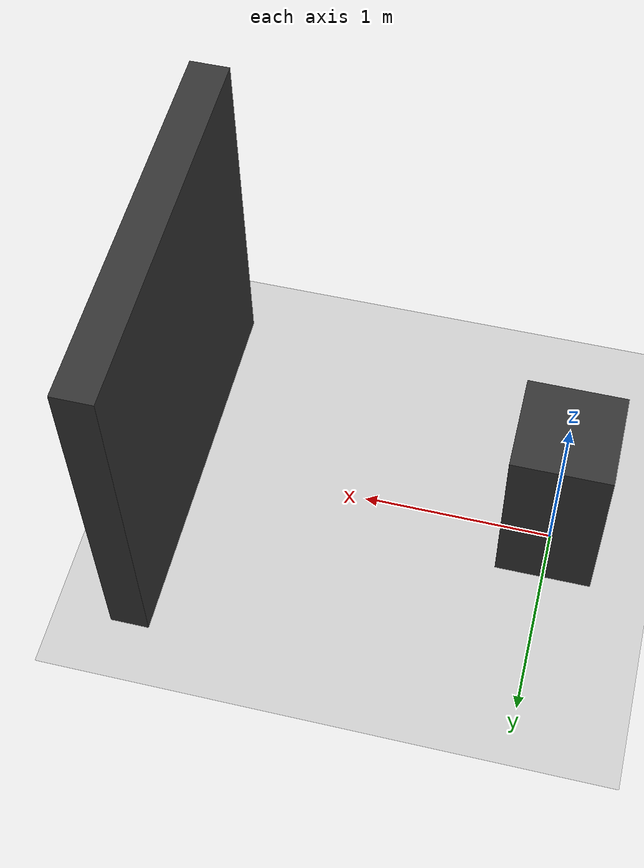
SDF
<?xml version="1.0" ?>
<sdf version="1.7">
    <world name="default">
        <!-- Physics -->
        <plugin
            filename="gz-sim-physics-system"
            name="gz::sim::systems::Physics"></plugin>
        <!-- Forwards simulation state to the GUI -->
        <plugin
            filename="gz-sim-scene-broadcaster-system"
            name="gz::sim::systems::SceneBroadcaster"></plugin>
        <!-- Processes user commands, like translate and create -->
        <plugin
            filename="gz-sim-user-commands-system"
            name="gz::sim::systems::UserCommands"></plugin>
        <!-- Generates rendering sensor data -->
        <plugin
            filename="gz-sim-sensors-system"
            name="gz::sim::systems::Sensors">
            <!-- ogre2 not working with just the MESA_GL_VERSION_OVERRIDE=3.3 trick -->
            <render_engine>ogre2</render_engine>
        </plugin>
        <plugin filename="gz-sim-imu-system"
        		name="gz::sim::systems::Imu"></plugin>
        <!-- light-->
        <light type="directional" name="sun">
            <cast_shadows>true</cast_shadows>
            <pose>0 0 10 0 0 0</pose>
            <diffuse>0.8 0.8 0.8 1</diffuse>
            <specular>0.2 0.2 0.2 1</specular>
            <attenuation>
                <range>1000</range>
                <constant>0.3</constant>
                <linear>0.01</linear>
                <quadratic>0.001</quadratic>
            </attenuation>
            <direction>-0.5 0.1 -0.9</direction>
        </light>
        <!--ground_plane-->
        <model name="ground_plane">
            <static>true</static>
            <link name="link">
                <collision name="collision">
                    <geometry>
                        <plane>
                            <normal>0 0 1</normal>
                        </plane>
                    </geometry>
                </collision>
                <visual name="visual">
                    <geometry>
                        <plane>
                            <normal>0 0 1</normal>
                            <size>100 100</size>
                        </plane>
                    </geometry>
                    <material>
                        <ambient>0.8 0.8 0.8 1</ambient>
                        <diffuse>0.8 0.8 0.8 1</diffuse>
                        <specular>0.8 0.8 0.8 1</specular>
                    </material>
                </visual>
            </link>
        </model>
        <!--box-->
        <model name="test_box">
            <pose>0 0 0.5 0 0 0</pose>
            <link name="link">
                <pose>0 0 0 0 0 0</pose>
                <collision name="collision">
                    <geometry>
                        <box>
                            <size>0.5 0.5 1.0</size>
                        </box>
                    </geometry>
                </collision>
                <visual name="visual">
                    <geometry>
                        <box>
                            <size>0.5 0.5 1.0</size>
                        </box>
                    </geometry>
                    <material>
                        <ambient>0.2 0.2 0.2 1</ambient>
                        <diffuse>0.2 0.2 0.2 1</diffuse>
                        <specular>0.2 0.2 0.2 1</specular>
                    </material>
                </visual>
            </link>
            <!--plugin for shooter-->
            <plugin filename="ProjectileShooter" name="gz::sim::systems::ProjectileShooter">
                <shooter_link>link</shooter_link>
                <shooter_offset>0.27 0 0.3 0 0 0</shooter_offset>
                <shooter_name>small_shooter</shooter_name>
                <projectile_velocity>20</projectile_velocity>
                <projectile_uri>model://rm_projectile_17mm</projectile_uri>
            </plugin>
        </model>
        <model name="target_box">
            <pose>2.0 0 0 0 0 0</pose>
            <link name="link">
                <pose>0 0 1.0 0 0 0</pose>
                <collision name="collision">
                    <geometry>
                        <box>
                            <size>0.2 2.0 2.0</size>
                        </box>
                    </geometry>
                </collision>
                <visual name="visual">
                    <geometry>
                        <box>
                            <size>0.2 2.0 2.0</size>
                        </box>
                    </geometry>
                    <material>
                        <ambient>0.2 0.2 0.2 1</ambient>
                        <diffuse>0.2 0.2 0.2 1</diffuse>
                        <specular>0.2 0.2 0.2 1</specular>
                    </material>
                </visual>
            </link>
        </model>
    </world>
</sdf>
